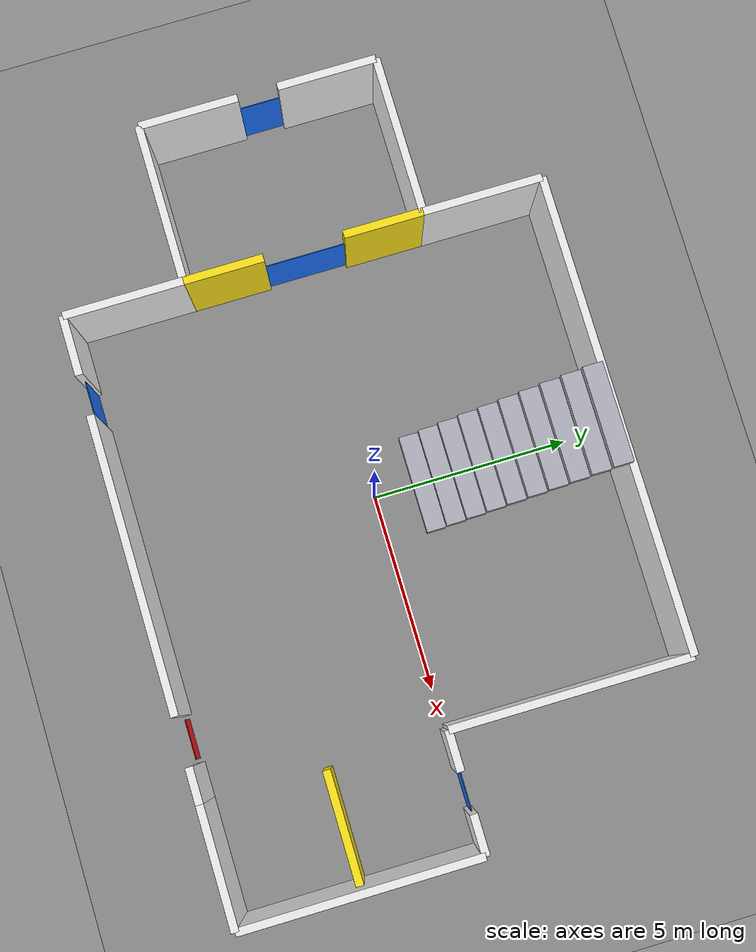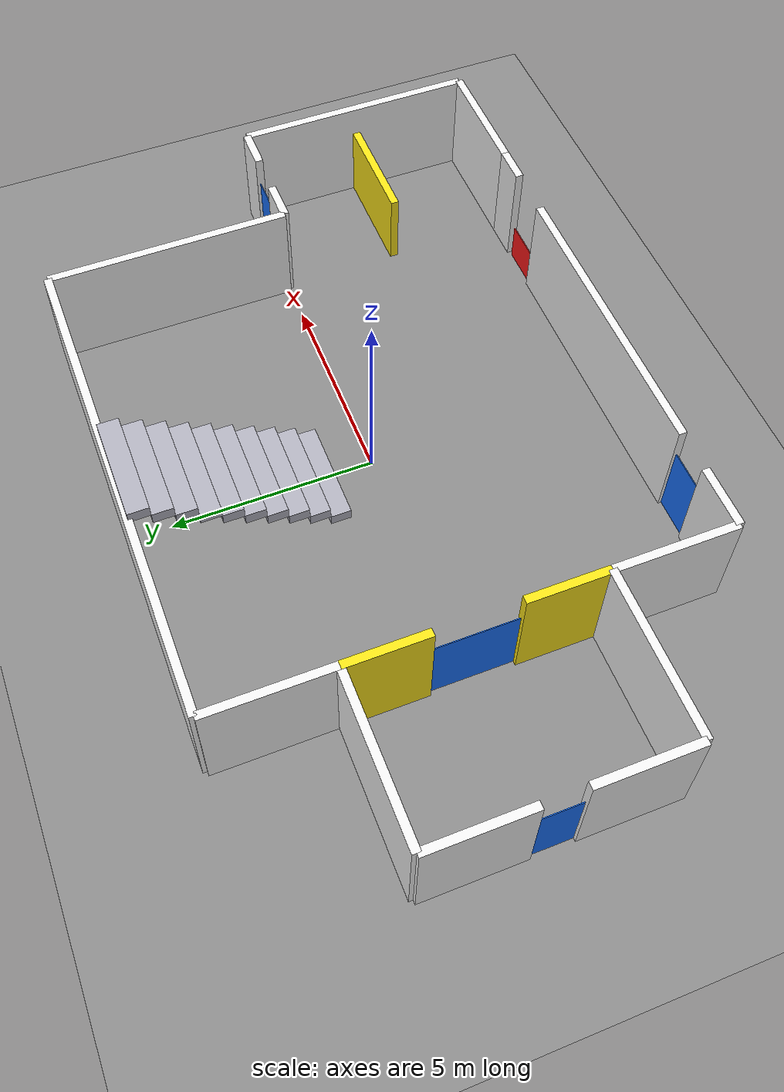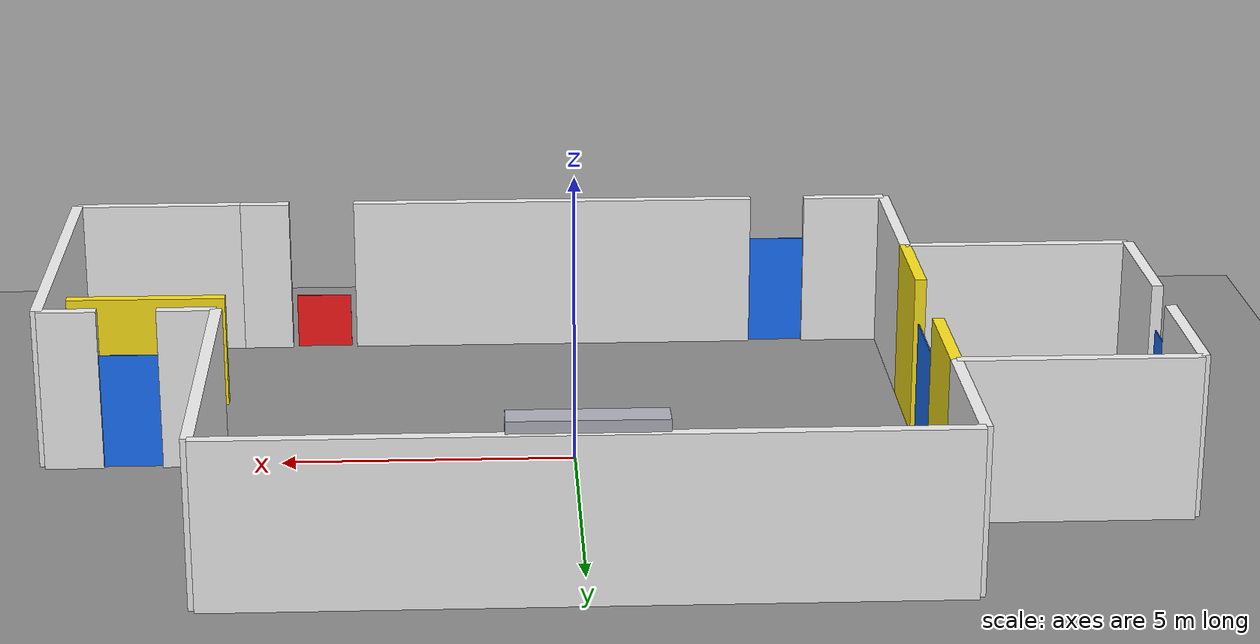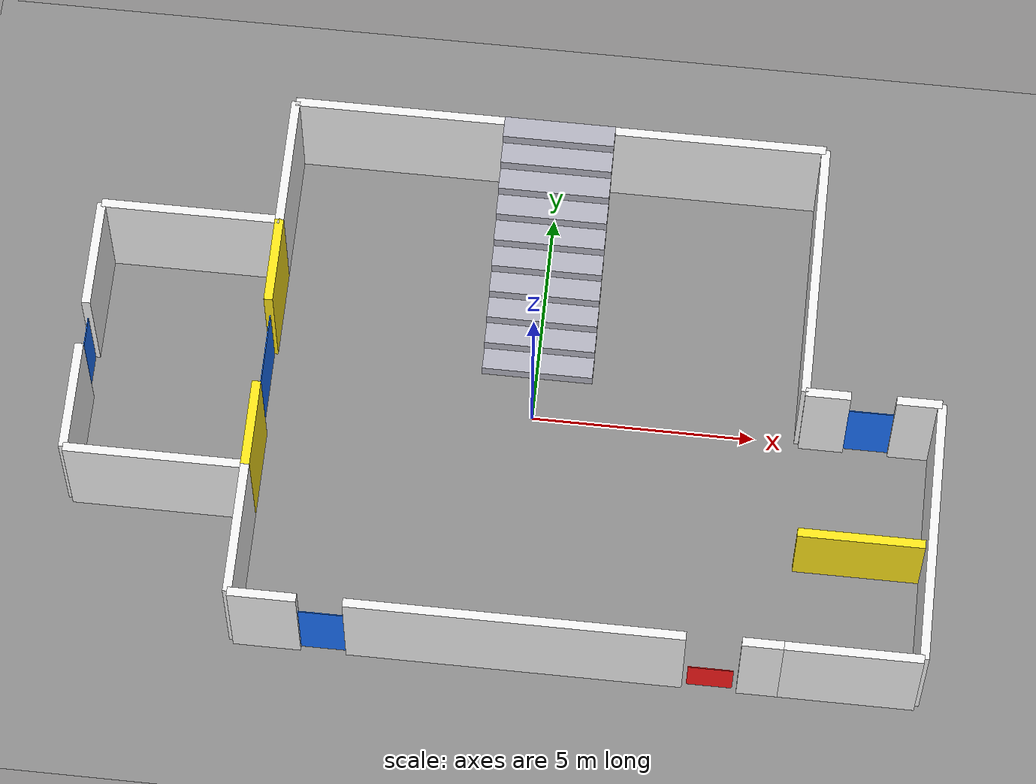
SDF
<?xml version="1.0"?>
<sdf version="1.8">
  <world name="church">
    <!-- 物理与系统插件 -->
    <physics name="1ms" type="ignored">
      <max_step_size>0.001</max_step_size>
      <real_time_factor>1.0</real_time_factor>
    </physics>
    <plugin filename="gz-sim-physics-system" name="gz::sim::systems::Physics"/>
    <plugin filename="gz-sim-user-commands-system" name="gz::sim::systems::UserCommands"/>
    <plugin filename="gz-sim-scene-broadcaster-system" name="gz::sim::systems::SceneBroadcaster"/>

    <!-- 光源 -->
    <light type="directional" name="sun">
      <pose>0 0 10 0 0 0</pose>
      <cast_shadows>true</cast_shadows>
      <diffuse>0.85 0.85 0.85 1</diffuse>
      <specular>0.2 0.2 0.2 1</specular>
      <direction>-0.4 0.2 -1.0</direction>
    </light>

    <!-- 30×30 网格地面 -->
    <model name="floor">
      <static>true</static>
      <link name="floor_link">
        <collision name="col">
          <geometry>
            <plane>
              <normal>0 0 1</normal>
              <size>30 30</size>
            </plane>
          </geometry>
        </collision>
        <visual name="vis">
          <geometry>
            <plane>
              <normal>0 0 1</normal>
              <size>30 30</size>
            </plane>
          </geometry>
          <material>
            <diffuse>0.55 0.55 0.55 1</diffuse>
          </material>
        </visual>
      </link>
    </model>

    <!-- ============== 外墙 + 内墙 + 门窗 + 楼梯（无二层平台） ============== -->
    <model name="walls_compound">
      <static>true</static>

      <!-- ===== 中矩形 12×12（原点在其中心） ===== -->
      <!-- 顶边：(-6,6)→(6,6) -->
      <link name="mid_north">
        <pose>0 6 1.4 0 0 0</pose>
        <collision name="col"><geometry><box><size>12 0.2 2.8</size></box></geometry></collision>
        <visual name="vis"><geometry><box><size>12 0.2 2.8</size></box></geometry>
          <material><diffuse>0.95 0.95 0.95 1</diffuse></material></visual>
      </link>

      <!-- 右侧外墙：仅保留上段 (6,6)→(6,0)，与右矩形接缝不立墙 -->
      <link name="mid_east_upper">
        <pose>6 3 1.4 0 0 0</pose>
        <collision name="col"><geometry><box><size>0.2 6 2.8</size></box></geometry></collision>
        <visual name="vis"><geometry><box><size>0.2 6 2.8</size></box></geometry>
          <material><diffuse>0.95 0.95 0.95 1</diffuse></material></visual>
      </link>

      <!-- 底边：(-6,-6)→(6,-6)，中间留两个开口：蓝门(中心x=-4,宽1) 和 红窗(中心x=4.5,宽1) -->
      <!-- 左底段：(-6,-6)→(-4.5,-6) 长1.5 -->
      <link name="mid_south_left_piece">
        <pose>-5.25 -6 1.4 0 0 0</pose>
        <collision name="col"><geometry><box><size>1.5 0.2 2.8</size></box></geometry></collision>
        <visual name="vis"><geometry><box><size>1.5 0.2 2.8</size></box></geometry>
          <material><diffuse>0.95 0.95 0.95 1</diffuse></material></visual>
      </link>
      <!-- 中左段：(-3.5,-6)→(3.9,-6) 长7.4 -->
      <link name="mid_south_mid_piece">
        <pose>0.2 -6 1.4 0 0 0</pose>
        <collision name="col"><geometry><box><size>7.4 0.2 2.8</size></box></geometry></collision>
        <visual name="vis"><geometry><box><size>7.4 0.2 2.8</size></box></geometry>
          <material><diffuse>0.95 0.95 0.95 1</diffuse></material></visual>
      </link>
      <!-- 中右段：(5.1,-6)→(6,-6) 长0.9 -->
      <link name="mid_south_right_piece">
        <pose>5.55 -6 1.4 0 0 0</pose>
        <collision name="col"><geometry><box><size>0.9 0.2 2.8</size></box></geometry></collision>
        <visual name="vis"><geometry><box><size>0.9 0.2 2.8</size></box></geometry>
          <material><diffuse>0.95 0.95 0.95 1</diffuse></material></visual>
      </link>

      <!-- 左侧外墙：只保留上段与下段；删除中段（接壤处开口） -->
      <!-- 上段：(-6,6)→(-6,3) -->
      <link name="mid_west_upper">
        <pose>-6 4.5 1.4 0 0 0</pose>
        <collision name="col"><geometry><box><size>0.2 3 2.8</size></box></geometry></collision>
        <visual name="vis"><geometry><box><size>0.2 3 2.8</size></box></geometry>
          <material><diffuse>0.95 0.95 0.95 1</diffuse></material></visual>
      </link>
      <!-- （已删除 mid_west_middle 以打开 x=-6, y∈[-3,3] 的贯通） -->
      <!-- 下段：(-6,-3)→(-6,-6) -->
      <link name="mid_west_lower">
        <pose>-6 -4.5 1.4 0 0 0</pose>
        <collision name="col"><geometry><box><size>0.2 3 2.8</size></box></geometry></collision>
        <visual name="vis"><geometry><box><size>0.2 3 2.8</size></box></geometry>
          <material><diffuse>0.95 0.95 0.95 1</diffuse></material></visual>
      </link>

      <!-- ===== 右矩形 3×6：x∈[6,9], y∈[-6,0]（与中矩形接缝不立墙） ===== -->
      <!-- 顶边开 1 m 蓝门：中心 (7.5,0)，拆成两段 -->
      <link name="right_top_left_piece">
        <pose>6.5 0 1.4 0 0 0</pose>
        <collision name="col"><geometry><box><size>1.0 0.2 2.8</size></box></geometry></collision>
        <visual name="vis"><geometry><box><size>1.0 0.2 2.8</size></box></geometry>
          <material><diffuse>0.95 0.95 0.95 1</diffuse></material></visual>
      </link>
      <link name="right_top_right_piece">
        <pose>8.5 0 1.4 0 0 0</pose>
        <collision name="col"><geometry><box><size>1.0 0.2 2.8</size></box></geometry></collision>
        <visual name="vis"><geometry><box><size>1.0 0.2 2.8</size></box></geometry>
          <material><diffuse>0.95 0.95 0.95 1</diffuse></material></visual>
      </link>
      <!-- 右侧：(9,0)→(9,-6) -->
      <link name="right_east">
        <pose>9 -3 1.4 0 0 0</pose>
        <collision name="col"><geometry><box><size>0.2 6 2.8</size></box></geometry></collision>
        <visual name="vis"><geometry><box><size>0.2 6 2.8</size></box></geometry>
          <material><diffuse>0.95 0.95 0.95 1</diffuse></material></visual>
      </link>
      <!-- 底边：(9,-6)→(6,-6) -->
      <link name="right_south">
        <pose>7.5 -6 1.4 0 0 0</pose>
        <collision name="col"><geometry><box><size>3 0.2 2.8</size></box></geometry></collision>
        <visual name="vis"><geometry><box><size>3 0.2 2.8</size></box></geometry>
          <material><diffuse>0.95 0.95 0.95 1</diffuse></material></visual>
      </link>

      <!-- 右矩形中央 黄色内墙（水平），高 2.0 m，长 2.8 m -->
      <link name="right_inner_yellow">
        <pose>7.5 -3 1.0 0 0 0</pose>
        <collision name="col"><geometry><box><size>2.8 0.2 2.0</size></box></geometry></collision>
        <visual name="vis">
          <geometry><box><size>2.8 0.2 2.0</size></box></geometry>
          <material><diffuse>1.0 0.9 0.1 1</diffuse></material>
        </visual>
      </link>

      <!-- 顶边：(-10,3)→(-6,3) -->
      <link name="left_north">
        <pose>-8 3 1.4 0 0 0</pose>
        <collision name="col"><geometry><box><size>4 0.2 2.8</size></box></geometry></collision>
        <visual name="vis"><geometry><box><size>4 0.2 2.8</size></box></geometry>
          <material><diffuse>0.95 0.95 0.95 1</diffuse></material></visual>
      </link>
      <!-- 左侧边（带蓝门开口） -->
      <link name="left_west_bottom_piece">
        <pose>-10 -1.75 1.4 0 0 0</pose>
        <collision name="col"><geometry><box><size>0.2 2.5 2.8</size></box></geometry></collision>
        <visual name="vis"><geometry><box><size>0.2 2.5 2.8</size></box></geometry>
          <material><diffuse>0.95 0.95 0.95 1</diffuse></material></visual>
      </link>
      <link name="left_west_top_piece">
        <pose>-10 1.75 1.4 0 0 0</pose>
        <collision name="col"><geometry><box><size>0.2 2.5 2.8</size></box></geometry></collision>
        <visual name="vis"><geometry><box><size>0.2 2.5 2.8</size></box></geometry>
          <material><diffuse>0.95 0.95 0.95 1</diffuse></material></visual>
      </link>
      <!-- 底边：(-10,-3)→(-6,-3) -->
      <link name="left_south">
        <pose>-8 -3 1.4 0 0 0</pose>
        <collision name="col"><geometry><box><size>4 0.2 2.8</size></box></geometry></collision>
        <visual name="vis"><geometry><box><size>4 0.2 2.8</size></box></geometry>
          <material><diffuse>0.95 0.95 0.95 1</diffuse></material></visual>
      </link>

      <link name="inner_wall1">
        <pose>-6 2 1.4 0 0 0</pose>
        <collision name="col"><geometry><box><size>0.2 2.0 2.8</size></box></geometry></collision>
        <visual name="vis"><geometry><box><size>0.2 2.0 2.8</size></box></geometry>
        <material><diffuse>1 0.9 0.1 1</diffuse></material></visual>
      </link>

      <link name="inner_wall2">
        <pose>-6 -2 1.4 0 0 0</pose>
        <collision name="col"><geometry><box><size>0.2 2.0 2.8</size></box></geometry></collision>
        <visual name="vis"><geometry><box><size>0.2 2.0 2.8</size></box></geometry>
        <material><diffuse>1 0.9 0.1 1</diffuse></material></visual>
      </link>

      <!-- ===== 三个门（蓝色，仅视觉）与一个窗口（红色，仅视觉） ===== -->
      <!-- 门1：右矩形顶边中点，宽 1 m，高 2 m -->
      <link name="door_right_top_visual">
        <pose>7.5 0.01 1.0 0 0 0</pose>My
        <visual name="vis">
          <geometry><box><size>1.0 0.02 2.0</size></box></geometry>
          <material><diffuse>0.1 0.45 1.0 1</diffuse></material>
        </visual>
      </link>
      <!-- 门2：中矩形底边，距左端 2 m（x=-4），宽 1 m -->
      <link name="door_mid_south_visual">
        <pose>-4.0 -5.99 1.0 0 0 0</pose>
        <visual name="vis">
          <geometry><box><size>1.0 0.02 2.0</size></box></geometry>
          <material><diffuse>0.1 0.45 1.0 1</diffuse></material>
        </visual>
      </link>
      <!-- 门3：左矩形左侧边中点（x=-10,y=0），宽 1 m，高 2 m（竖向） -->
      <link name="door_left_west_visual">
        <pose>-10.01 0 1.0 0 0 0</pose>
        <visual name="vis">
          <geometry><box><size>0.02 1.0 2.0</size></box></geometry>
          <material><diffuse>0.1 0.45 1.0 1</diffuse></material>
        </visual>
      </link>
      <!-- 窗口：中矩形底边右侧（中心 x=4.5，y=-6），宽 1 m、高 1 m（红色） -->
      <link name="window_mid_south_visual">
        <pose>4.5 -5.99 0.5 0 0 0</pose>
        <visual name="vis">
          <geometry><box><size>1.0 0.02 1.0</size></box></geometry>
          <material><diffuse>1.0 0.1 0.1 1</diffuse></material>
        </visual>
      </link>
      <!--bangong shi men：中矩形底边右侧（中心 x=4.5，y=-6），宽 2 m、高 1 m（红色） -->
      <link name="inner_top_visual">
        <pose>-5.99 0 1.0 0 0 0</pose>
        <visual name="vis">
          <geometry><box><size>0.02 2.0 2.0</size></box></geometry>
          <material><diffuse>0.1 0.45 1.0 1</diffuse></material>
        </visual>
      </link>

      <!-- ===== 梯形台阶楼梯：10 级台阶，宽 2.5（x），踏步 0.5（y），踢面 0.3（z） ===== -->
      <!-- 台阶范围 y: 1.0 → 6.0（贴中矩形顶墙 y=6），z: 0 → 3.0 -->
      <link name="stair_step_0"><pose>0 1.25 0.15 0 0 0</pose><collision name="col"><geometry><box><size>2.5 0.5 0.3</size></box></geometry></collision><visual name="vis"><geometry><box><size>2.5 0.5 0.3</size></box></geometry><material><diffuse>0.7 0.7 0.75 1</diffuse></material></visual></link>
      <link name="stair_step_1"><pose>0 1.75 0.45 0 0 0</pose><collision name="col"><geometry><box><size>2.5 0.5 0.3</size></box></geometry></collision><visual name="vis"><geometry><box><size>2.5 0.5 0.3</size></box></geometry><material><diffuse>0.7 0.7 0.75 1</diffuse></material></visual></link>
      <link name="stair_step_2"><pose>0 2.25 0.75 0 0 0</pose><collision name="col"><geometry><box><size>2.5 0.5 0.3</size></box></geometry></collision><visual name="vis"><geometry><box><size>2.5 0.5 0.3</size></box></geometry><material><diffuse>0.7 0.7 0.75 1</diffuse></material></visual></link>
      <link name="stair_step_3"><pose>0 2.75 1.05 0 0 0</pose><collision name="col"><geometry><box><size>2.5 0.5 0.3</size></box></geometry></collision><visual name="vis"><geometry><box><size>2.5 0.5 0.3</size></box></geometry><material><diffuse>0.7 0.7 0.75 1</diffuse></material></visual></link>
      <link name="stair_step_4"><pose>0 3.25 1.35 0 0 0</pose><collision name="col"><geometry><box><size>2.5 0.5 0.3</size></box></geometry></collision><visual name="vis"><geometry><box><size>2.5 0.5 0.3</size></box></geometry><material><diffuse>0.7 0.7 0.75 1</diffuse></material></visual></link>
      <link name="stair_step_5"><pose>0 3.75 1.65 0 0 0</pose><collision name="col"><geometry><box><size>2.5 0.5 0.3</size></box></geometry></collision><visual name="vis"><geometry><box><size>2.5 0.5 0.3</size></box></geometry><material><diffuse>0.7 0.7 0.75 1</diffuse></material></visual></link>
      <link name="stair_step_6"><pose>0 4.25 1.95 0 0 0</pose><collision name="col"><geometry><box><size>2.5 0.5 0.3</size></box></geometry></collision><visual name="vis"><geometry><box><size>2.5 0.5 0.3</size></box></geometry><material><diffuse>0.7 0.7 0.75 1</diffuse></material></visual></link>
      <link name="stair_step_7"><pose>0 4.75 2.25 0 0 0</pose><collision name="col"><geometry><box><size>2.5 0.5 0.3</size></box></geometry></collision><visual name="vis"><geometry><box><size>2.5 0.5 0.3</size></box></geometry><material><diffuse>0.7 0.7 0.75 1</diffuse></material></visual></link>
      <link name="stair_step_8"><pose>0 5.25 2.55 0 0 0</pose><collision name="col"><geometry><box><size>2.5 0.5 0.3</size></box></geometry></collision><visual name="vis"><geometry><box><size>2.5 0.5 0.3</size></box></geometry><material><diffuse>0.7 0.7 0.75 1</diffuse></material></visual></link>
      <link name="stair_step_9"><pose>0 5.75 2.85 0 0 0</pose><collision name="col"><geometry><box><size>2.5 0.5 0.3</size></box></geometry></collision><visual name="vis"><geometry><box><size>2.5 0.5 0.3</size></box></geometry><material><diffuse>0.7 0.7 0.75 1</diffuse></material></visual></link>
    </model>
  </world>
</sdf>
